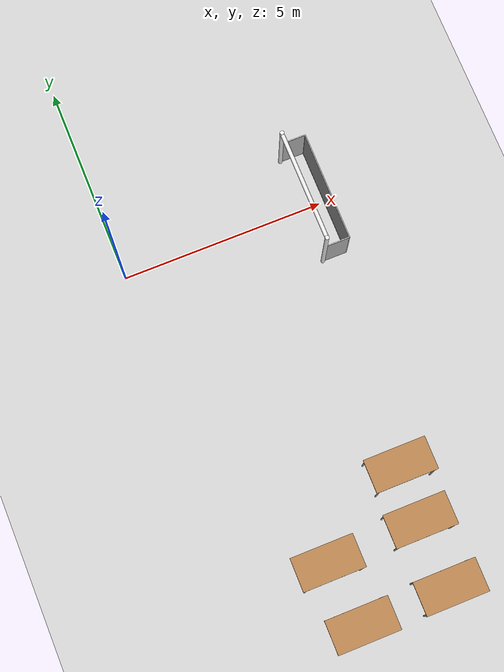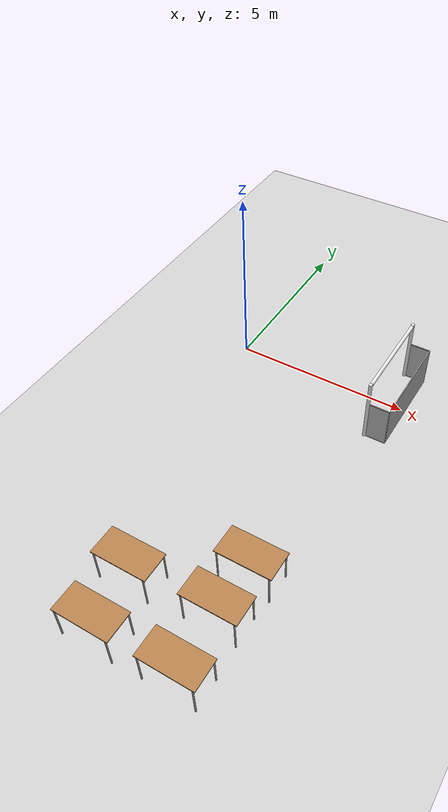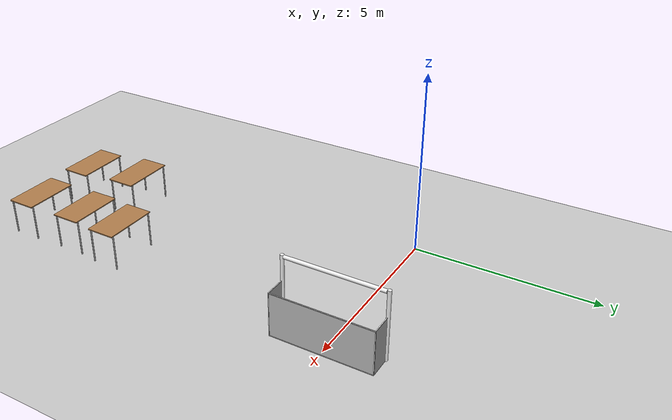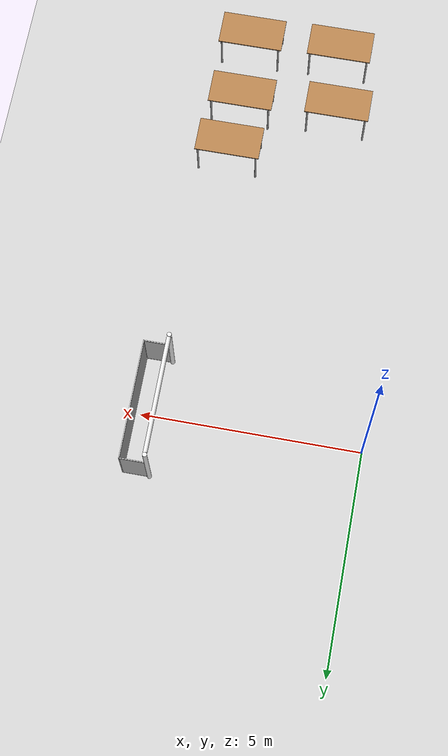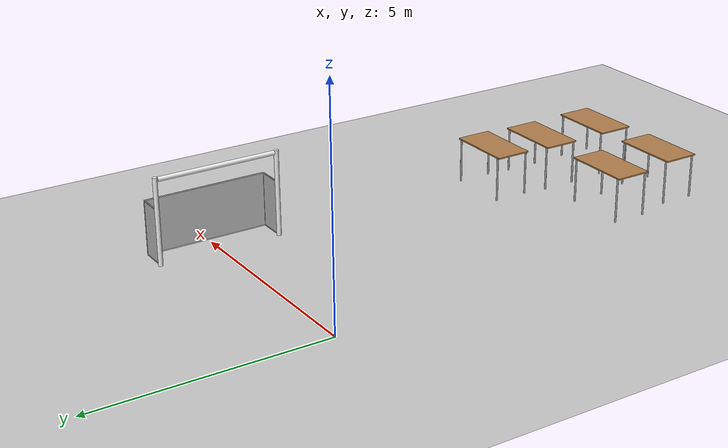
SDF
<sdf version="1.6">
 <world name="default">
  <model name="ground_plane">
   <static>1</static>
   <link name="link">
    <collision name="collision">
     <geometry><plane><normal>0 0 1</normal><size>100 100</size></plane></geometry>
     <surface><friction><ode><mu>100</mu><mu2>50</mu2></ode></friction></surface>
    </collision>
    <visual name="visual">
     <cast_shadows>0</cast_shadows>
     <geometry><plane><normal>0 0 1</normal><size>100 100</size></plane></geometry>
     <material>
      <script><uri>file://media/materials/scripts/gazebo.material</uri><name>Gazebo/Grey</name></script>
     </material>
    </visual>
   </link>
  </model>
  <model name="teensize_goal">
   <static>1</static>
   <link name="left_post">
    <pose>0 1.35 0.95 0 -0 0</pose>
    <collision name="collision">
     <geometry><cylinder><radius>0.05</radius><length>1.9</length></cylinder></geometry>
    </collision>
    <visual name="visual">
     <geometry><cylinder><radius>0.05</radius><length>1.9</length></cylinder></geometry>
     <material>
      <script><uri>file://media/materials/scripts/gazebo.material</uri><name>Gazebo/White</name></script>
     </material>
    </visual>
   </link>
   <link name="left_support_horiz_lower">
    <pose>0.3 1.35 0.01 0 -0 0</pose>
    <collision name="collision"><geometry><box><size>0.6 0.02 0.02</size></box></geometry></collision>
    <visual name="visual">
     <geometry><box><size>0.6 0.02 0.02</size></box></geometry>
     <material>
      <script><uri>file://media/materials/scripts/gazebo.material</uri><name>Gazebo/White</name></script>
     </material>
    </visual>
   </link>
   <link name="left_support_horiz_upper">
    <pose>0.3 1.35 1.2 0 -0 0</pose>
    <collision name="collision"><geometry><box><size>0.6 0.02 0.02</size></box></geometry></collision>
    <visual name="visual">
     <geometry><box><size>0.6 0.02 0.02</size></box></geometry>
     <material>
      <script><uri>file://media/materials/scripts/gazebo.material</uri><name>Gazebo/White</name></script>
     </material>
    </visual>
   </link>
   <link name="left_support_vertical">
    <pose>0.6 1.35 0.6 3.14159 1.57079 3.14159</pose>
    <collision name="collision"><geometry><box><size>1.2 0.02 0.02</size></box></geometry></collision>
    <visual name="visual">
     <geometry><box><size>1.2 0.02 0.02</size></box></geometry>
     <material>
      <script><uri>file://media/materials/scripts/gazebo.material</uri><name>Gazebo/White</name></script>
     </material>
    </visual>
   </link>
   <link name="right_support_horiz_lower">
    <pose>0.3 -1.35 0.01 0 -0 0</pose>
    <collision name="collision"><geometry><box><size>0.6 0.02 0.02</size></box></geometry></collision>
    <visual name="visual">
     <geometry><box><size>0.6 0.02 0.02</size></box></geometry>
     <material>
      <script><uri>file://media/materials/scripts/gazebo.material</uri><name>Gazebo/White</name></script>
     </material>
    </visual>
   </link>
   <link name="right_support_horiz_upper">
    <pose>0.3 -1.35 1.2 0 -0 0</pose>
    <collision name="collision"><geometry><box><size>0.6 0.02 0.02</size></box></geometry></collision>
    <visual name="visual">
     <geometry><box><size>0.6 0.02 0.02</size></box></geometry>
     <material>
      <script><uri>file://media/materials/scripts/gazebo.material</uri><name>Gazebo/White</name></script>
     </material>
    </visual>
   </link>
   <link name="right_support_vertical">
    <pose>0.6 -1.35 0.6 3.14159 1.57079 3.14159</pose>
    <collision name="collision"><geometry><box><size>1.2 0.02 0.02</size></box></geometry></collision>
    <visual name="visual">
     <geometry><box><size>1.2 0.02 0.02</size></box></geometry>
     <material>
      <script><uri>file://media/materials/scripts/gazebo.material</uri><name>Gazebo/White</name></script>
     </material>
    </visual>
   </link>
   <link name="center_support_horiz_lower">
    <pose>0.6 0 0.01 3.14159 1.57079 3.14159</pose>
    <collision name="collision"><geometry><box><size>0.02 2.7 0.02</size></box></geometry></collision>
    <visual name="visual">
     <geometry><box><size>0.02 2.7 0.02</size></box></geometry>
     <material>
      <script><uri>file://media/materials/scripts/gazebo.material</uri><name>Gazebo/White</name></script>
     </material>
    </visual>
   </link>
   <link name="center_support_horiz_upper">
    <pose>0.6 0 1.2 3.14159 1.57079 3.14159</pose>
    <collision name="collision"><geometry><box><size>0.02 2.7 0.02</size></box></geometry></collision>
    <visual name="visual">
     <geometry><box><size>0.02 2.7 0.02</size></box></geometry>
     <material>
      <script><uri>file://media/materials/scripts/gazebo.material</uri><name>Gazebo/White</name></script>
     </material>
    </visual>
   </link>
   <link name="right_post">
    <pose>0 -1.35 0.95 0 -0 0</pose>
    <collision name="collision">
     <geometry><cylinder><radius>0.05</radius><length>1.9</length></cylinder></geometry>
    </collision>
    <visual name="visual">
     <geometry><cylinder><radius>0.05</radius><length>1.9</length></cylinder></geometry>
     <material>
      <script><uri>file://media/materials/scripts/gazebo.material</uri><name>Gazebo/White</name></script>
     </material>
    </visual>
   </link>
   <link name="crossbar">
    <pose>0 0 1.85 1.57 1.57 0</pose>
    <collision name="collision">
     <geometry><cylinder><radius>0.05</radius><length>2.6</length></cylinder></geometry>
    </collision>
    <visual name="visual">
     <geometry><cylinder><radius>0.05</radius><length>2.6</length></cylinder></geometry>
     <material>
      <script><uri>file://media/materials/scripts/gazebo.material</uri><name>Gazebo/White</name></script>
     </material>
    </visual>
   </link>
   <link name="center_net">
    <pose>0.6 0 0.6 0 -0 0</pose>
    <collision name="collision"><geometry><box><size>0.01 2.7 1.2</size></box></geometry></collision>
    <visual name="visual">
     <geometry><box><size>0.01 2.7 1.2</size></box></geometry>
     <material>
      <script>
       <uri>model://teensize_goal/materials/scripts/</uri>
       <uri>model://teensize_goal/materials/textures/</uri>
       <name>RoboCup/Net</name>
      </script>
     </material>
    </visual>
   </link>
   <link name="left_net">
    <pose>0.3 1.35 0.6 0 -0 0</pose>
    <collision name="collision"><geometry><box><size>0.6 0.01 1.2</size></box></geometry></collision>
    <visual name="visual">
     <geometry><box><size>0.6 0.01 1.2</size></box></geometry>
     <material>
      <script>
       <uri>model://teensize_goal/materials/scripts/</uri>
       <uri>model://teensize_goal/materials/textures/</uri>
       <name>RoboCup/Net</name>
      </script>
     </material>
    </visual>
   </link>
   <link name="right_net">
    <pose>0.3 -1.35 0.6 0 -0 0</pose>
    <collision name="collision"><geometry><box><size>0.6 0.01 1.2</size></box></geometry></collision>
    <visual name="visual">
     <geometry><box><size>0.6 0.01 1.2</size></box></geometry>
     <material>
      <script>
       <uri>model://teensize_goal/materials/scripts/</uri>
       <uri>model://teensize_goal/materials/textures/</uri>
       <name>RoboCup/Net</name>
      </script>
     </material>
    </visual>
   </link>
   <pose>4.525 0 0 0 -0 0</pose>
  </model>
  <model name="table_11">
   <static>1</static>
   <link name="link">
    <collision name="surface">
     <pose>0 0 1 0 -0 0</pose>
     <geometry><box><size>1.5 0.8 0.03</size></box></geometry>
     <surface><friction><ode><mu>0.6</mu><mu2>0.6</mu2></ode></friction></surface>
    </collision>
    <visual name="visual1">
     <pose>0 0 1 0 -0 0</pose>
     <geometry><box><size>1.5 0.8 0.03</size></box></geometry>
     <material>
      <script><uri>file://media/materials/scripts/gazebo.material</uri><name>Gazebo/Wood</name></script>
     </material>
    </visual>
    <collision name="front_left_leg">
     <pose>0.68 0.38 0.5 0 -0 0</pose>
     <geometry><cylinder><radius>0.02</radius><length>1</length></cylinder></geometry>
    </collision>
    <visual name="front_left_leg">
     <pose>0.68 0.38 0.5 0 -0 0</pose>
     <geometry><cylinder><radius>0.02</radius><length>1</length></cylinder></geometry>
     <material>
      <script><uri>file://media/materials/scripts/gazebo.material</uri><name>Gazebo/Grey</name></script>
     </material>
    </visual>
    <collision name="front_right_leg">
     <pose>0.68 -0.38 0.5 0 -0 0</pose>
     <geometry><cylinder><radius>0.02</radius><length>1</length></cylinder></geometry>
    </collision>
    <visual name="front_right_leg">
     <pose>0.68 -0.38 0.5 0 -0 0</pose>
     <geometry><cylinder><radius>0.02</radius><length>1</length></cylinder></geometry>
     <material>
      <script><uri>file://media/materials/scripts/gazebo.material</uri><name>Gazebo/Grey</name></script>
     </material>
    </visual>
    <collision name="back_right_leg">
     <pose>-0.68 -0.38 0.5 0 -0 0</pose>
     <geometry><cylinder><radius>0.02</radius><length>1</length></cylinder></geometry>
    </collision>
    <visual name="back_right_leg">
     <pose>-0.68 -0.38 0.5 0 -0 0</pose>
     <geometry><cylinder><radius>0.02</radius><length>1</length></cylinder></geometry>
     <material>
      <script><uri>file://media/materials/scripts/gazebo.material</uri><name>Gazebo/Grey</name></script>
     </material>
    </visual>
    <collision name="back_left_leg">
     <pose>-0.68 0.38 0.5 0 -0 0</pose>
     <geometry><cylinder><radius>0.02</radius><length>1</length></cylinder></geometry>
    </collision>
    <visual name="back_left_leg">
     <pose>-0.68 0.38 0.5 0 -0 0</pose>
     <geometry><cylinder><radius>0.02</radius><length>1</length></cylinder></geometry>
     <material>
      <script><uri>file://media/materials/scripts/gazebo.material</uri><name>Gazebo/Grey</name></script>
     </material>
    </visual>
   </link>
   <pose>4.17511 -6.61689 0 0 -0 0</pose>
  </model>
  <model name="table_11_clone">
   <static>1</static>
   <link name="link">
    <collision name="surface">
     <pose>0 0 1 0 -0 0</pose>
     <geometry><box><size>1.5 0.8 0.03</size></box></geometry>
     <surface><friction><ode><mu>0.6</mu><mu2>0.6</mu2></ode></friction></surface>
    </collision>
    <visual name="visual1">
     <pose>0 0 1 0 -0 0</pose>
     <geometry><box><size>1.5 0.8 0.03</size></box></geometry>
     <material>
      <script><uri>file://media/materials/scripts/gazebo.material</uri><name>Gazebo/Wood</name></script>
     </material>
    </visual>
    <collision name="front_left_leg">
     <pose>0.68 0.38 0.5 0 -0 0</pose>
     <geometry><cylinder><radius>0.02</radius><length>1</length></cylinder></geometry>
    </collision>
    <visual name="front_left_leg">
     <pose>0.68 0.38 0.5 0 -0 0</pose>
     <geometry><cylinder><radius>0.02</radius><length>1</length></cylinder></geometry>
     <material>
      <script><uri>file://media/materials/scripts/gazebo.material</uri><name>Gazebo/Grey</name></script>
     </material>
    </visual>
    <collision name="front_right_leg">
     <pose>0.68 -0.38 0.5 0 -0 0</pose>
     <geometry><cylinder><radius>0.02</radius><length>1</length></cylinder></geometry>
    </collision>
    <visual name="front_right_leg">
     <pose>0.68 -0.38 0.5 0 -0 0</pose>
     <geometry><cylinder><radius>0.02</radius><length>1</length></cylinder></geometry>
     <material>
      <script><uri>file://media/materials/scripts/gazebo.material</uri><name>Gazebo/Grey</name></script>
     </material>
    </visual>
    <collision name="back_right_leg">
     <pose>-0.68 -0.38 0.5 0 -0 0</pose>
     <geometry><cylinder><radius>0.02</radius><length>1</length></cylinder></geometry>
    </collision>
    <visual name="back_right_leg">
     <pose>-0.68 -0.38 0.5 0 -0 0</pose>
     <geometry><cylinder><radius>0.02</radius><length>1</length></cylinder></geometry>
     <material>
      <script><uri>file://media/materials/scripts/gazebo.material</uri><name>Gazebo/Grey</name></script>
     </material>
    </visual>
    <collision name="back_left_leg">
     <pose>-0.68 0.38 0.5 0 -0 0</pose>
     <geometry><cylinder><radius>0.02</radius><length>1</length></cylinder></geometry>
    </collision>
    <visual name="back_left_leg">
     <pose>-0.68 0.38 0.5 0 -0 0</pose>
     <geometry><cylinder><radius>0.02</radius><length>1</length></cylinder></geometry>
     <material>
      <script><uri>file://media/materials/scripts/gazebo.material</uri><name>Gazebo/Grey</name></script>
     </material>
    </visual>
   </link>
   <pose>4.09903 -7.90619 0 0 -0 0</pose>
  </model>
  <model name="table_11_clone_0">
   <static>1</static>
   <link name="link">
    <collision name="surface">
     <pose>0 0 1 0 -0 0</pose>
     <geometry><box><size>1.5 0.8 0.03</size></box></geometry>
     <surface><friction><ode><mu>0.6</mu><mu2>0.6</mu2></ode></friction></surface>
    </collision>
    <visual name="visual1">
     <pose>0 0 1 0 -0 0</pose>
     <geometry><box><size>1.5 0.8 0.03</size></box></geometry>
     <material>
      <script><uri>file://media/materials/scripts/gazebo.material</uri><name>Gazebo/Wood</name></script>
     </material>
    </visual>
    <collision name="front_left_leg">
     <pose>0.68 0.38 0.5 0 -0 0</pose>
     <geometry><cylinder><radius>0.02</radius><length>1</length></cylinder></geometry>
    </collision>
    <visual name="front_left_leg">
     <pose>0.68 0.38 0.5 0 -0 0</pose>
     <geometry><cylinder><radius>0.02</radius><length>1</length></cylinder></geometry>
     <material>
      <script><uri>file://media/materials/scripts/gazebo.material</uri><name>Gazebo/Grey</name></script>
     </material>
    </visual>
    <collision name="front_right_leg">
     <pose>0.68 -0.38 0.5 0 -0 0</pose>
     <geometry><cylinder><radius>0.02</radius><length>1</length></cylinder></geometry>
    </collision>
    <visual name="front_right_leg">
     <pose>0.68 -0.38 0.5 0 -0 0</pose>
     <geometry><cylinder><radius>0.02</radius><length>1</length></cylinder></geometry>
     <material>
      <script><uri>file://media/materials/scripts/gazebo.material</uri><name>Gazebo/Grey</name></script>
     </material>
    </visual>
    <collision name="back_right_leg">
     <pose>-0.68 -0.38 0.5 0 -0 0</pose>
     <geometry><cylinder><radius>0.02</radius><length>1</length></cylinder></geometry>
    </collision>
    <visual name="back_right_leg">
     <pose>-0.68 -0.38 0.5 0 -0 0</pose>
     <geometry><cylinder><radius>0.02</radius><length>1</length></cylinder></geometry>
     <material>
      <script><uri>file://media/materials/scripts/gazebo.material</uri><name>Gazebo/Grey</name></script>
     </material>
    </visual>
    <collision name="back_left_leg">
     <pose>-0.68 0.38 0.5 0 -0 0</pose>
     <geometry><cylinder><radius>0.02</radius><length>1</length></cylinder></geometry>
    </collision>
    <visual name="back_left_leg">
     <pose>-0.68 0.38 0.5 0 -0 0</pose>
     <geometry><cylinder><radius>0.02</radius><length>1</length></cylinder></geometry>
     <material>
      <script><uri>file://media/materials/scripts/gazebo.material</uri><name>Gazebo/Grey</name></script>
     </material>
    </visual>
   </link>
   <pose>4.1374 -9.50055 0 0 -0 0</pose>
  </model>
  <model name="table_11_clone_1">
   <static>1</static>
   <link name="link">
    <collision name="surface">
     <pose>0 0 1 0 -0 0</pose>
     <geometry><box><size>1.5 0.8 0.03</size></box></geometry>
     <surface><friction><ode><mu>0.6</mu><mu2>0.6</mu2></ode></friction></surface>
    </collision>
    <visual name="visual1">
     <pose>0 0 1 0 -0 0</pose>
     <geometry><box><size>1.5 0.8 0.03</size></box></geometry>
     <material>
      <script><uri>file://media/materials/scripts/gazebo.material</uri><name>Gazebo/Wood</name></script>
     </material>
    </visual>
    <collision name="front_left_leg">
     <pose>0.68 0.38 0.5 0 -0 0</pose>
     <geometry><cylinder><radius>0.02</radius><length>1</length></cylinder></geometry>
    </collision>
    <visual name="front_left_leg">
     <pose>0.68 0.38 0.5 0 -0 0</pose>
     <geometry><cylinder><radius>0.02</radius><length>1</length></cylinder></geometry>
     <material>
      <script><uri>file://media/materials/scripts/gazebo.material</uri><name>Gazebo/Grey</name></script>
     </material>
    </visual>
    <collision name="front_right_leg">
     <pose>0.68 -0.38 0.5 0 -0 0</pose>
     <geometry><cylinder><radius>0.02</radius><length>1</length></cylinder></geometry>
    </collision>
    <visual name="front_right_leg">
     <pose>0.68 -0.38 0.5 0 -0 0</pose>
     <geometry><cylinder><radius>0.02</radius><length>1</length></cylinder></geometry>
     <material>
      <script><uri>file://media/materials/scripts/gazebo.material</uri><name>Gazebo/Grey</name></script>
     </material>
    </visual>
    <collision name="back_right_leg">
     <pose>-0.68 -0.38 0.5 0 -0 0</pose>
     <geometry><cylinder><radius>0.02</radius><length>1</length></cylinder></geometry>
    </collision>
    <visual name="back_right_leg">
     <pose>-0.68 -0.38 0.5 0 -0 0</pose>
     <geometry><cylinder><radius>0.02</radius><length>1</length></cylinder></geometry>
     <material>
      <script><uri>file://media/materials/scripts/gazebo.material</uri><name>Gazebo/Grey</name></script>
     </material>
    </visual>
    <collision name="back_left_leg">
     <pose>-0.68 0.38 0.5 0 -0 0</pose>
     <geometry><cylinder><radius>0.02</radius><length>1</length></cylinder></geometry>
    </collision>
    <visual name="back_left_leg">
     <pose>-0.68 0.38 0.5 0 -0 0</pose>
     <geometry><cylinder><radius>0.02</radius><length>1</length></cylinder></geometry>
     <material>
      <script><uri>file://media/materials/scripts/gazebo.material</uri><name>Gazebo/Grey</name></script>
     </material>
    </visual>
   </link>
   <pose>1.83485 -8.01606 0 0 -0 0</pose>
  </model>
  <model name="table_11_clone_2">
   <static>1</static>
   <link name="link">
    <collision name="surface">
     <pose>0 0 1 0 -0 0</pose>
     <geometry><box><size>1.5 0.8 0.03</size></box></geometry>
     <surface><friction><ode><mu>0.6</mu><mu2>0.6</mu2></ode></friction></surface>
    </collision>
    <visual name="visual1">
     <pose>0 0 1 0 -0 0</pose>
     <geometry><box><size>1.5 0.8 0.03</size></box></geometry>
     <material>
      <script><uri>file://media/materials/scripts/gazebo.material</uri><name>Gazebo/Wood</name></script>
     </material>
    </visual>
    <collision name="front_left_leg">
     <pose>0.68 0.38 0.5 0 -0 0</pose>
     <geometry><cylinder><radius>0.02</radius><length>1</length></cylinder></geometry>
    </collision>
    <visual name="front_left_leg">
     <pose>0.68 0.38 0.5 0 -0 0</pose>
     <geometry><cylinder><radius>0.02</radius><length>1</length></cylinder></geometry>
     <material>
      <script><uri>file://media/materials/scripts/gazebo.material</uri><name>Gazebo/Grey</name></script>
     </material>
    </visual>
    <collision name="front_right_leg">
     <pose>0.68 -0.38 0.5 0 -0 0</pose>
     <geometry><cylinder><radius>0.02</radius><length>1</length></cylinder></geometry>
    </collision>
    <visual name="front_right_leg">
     <pose>0.68 -0.38 0.5 0 -0 0</pose>
     <geometry><cylinder><radius>0.02</radius><length>1</length></cylinder></geometry>
     <material>
      <script><uri>file://media/materials/scripts/gazebo.material</uri><name>Gazebo/Grey</name></script>
     </material>
    </visual>
    <collision name="back_right_leg">
     <pose>-0.68 -0.38 0.5 0 -0 0</pose>
     <geometry><cylinder><radius>0.02</radius><length>1</length></cylinder></geometry>
    </collision>
    <visual name="back_right_leg">
     <pose>-0.68 -0.38 0.5 0 -0 0</pose>
     <geometry><cylinder><radius>0.02</radius><length>1</length></cylinder></geometry>
     <material>
      <script><uri>file://media/materials/scripts/gazebo.material</uri><name>Gazebo/Grey</name></script>
     </material>
    </visual>
    <collision name="back_left_leg">
     <pose>-0.68 0.38 0.5 0 -0 0</pose>
     <geometry><cylinder><radius>0.02</radius><length>1</length></cylinder></geometry>
    </collision>
    <visual name="back_left_leg">
     <pose>-0.68 0.38 0.5 0 -0 0</pose>
     <geometry><cylinder><radius>0.02</radius><length>1</length></cylinder></geometry>
     <material>
      <script><uri>file://media/materials/scripts/gazebo.material</uri><name>Gazebo/Grey</name></script>
     </material>
    </visual>
   </link>
   <pose>2.02437 -9.54463 0 0 -0 0</pose>
  </model>
 </world>
</sdf>
